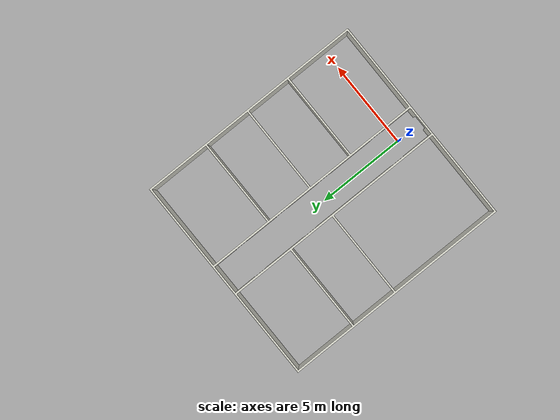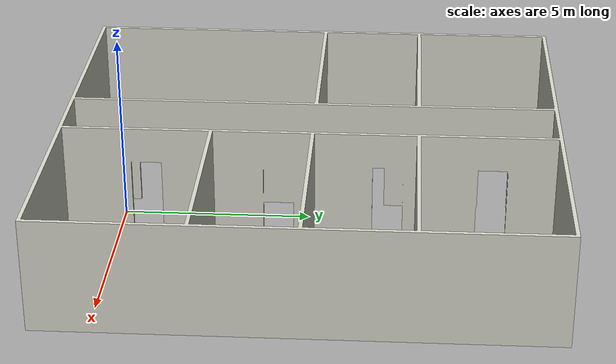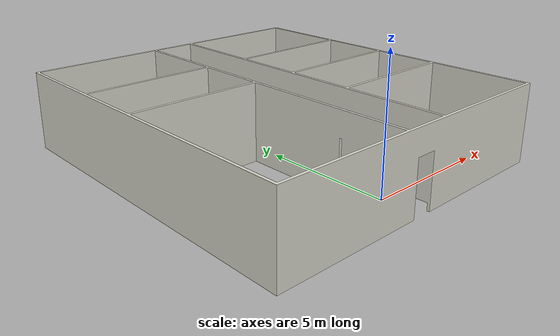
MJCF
<!-- bim-experiments secorolab mesh; visual and lidar only, MuJoCo would collide its convex hull -->
<mujoco model="secoro">
  <asset>
    <mesh name="secoro" file="meshes/uni-bremen_secoro.stl"/>
    <material name="wall" rgba="0.85 0.85 0.8 1"/>
  </asset>
  <worldbody>
    <body name="secoro" pos="-0.78 -1.5 0">
      <geom type="mesh" mesh="secoro" material="wall" contype="0" conaffinity="0"/>
    </body>
  </worldbody>
</mujoco>
